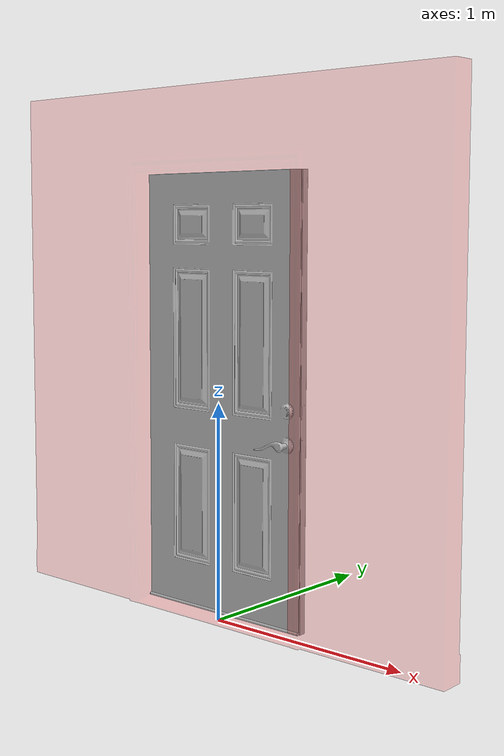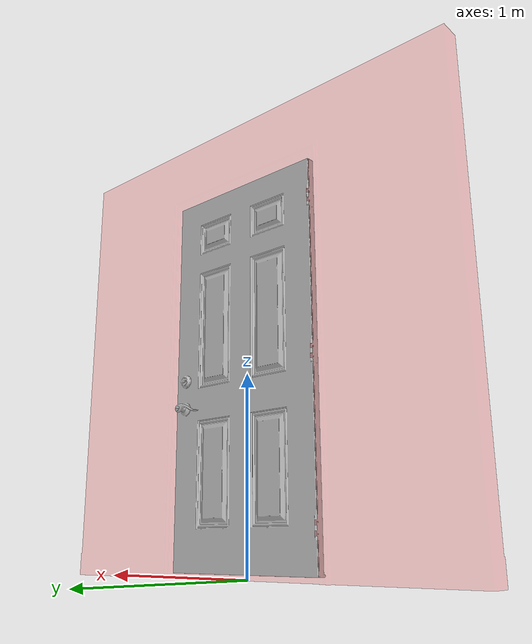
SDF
<?xml version="1.0"?>
<!-- Minimal generated SDF -->
<sdf version='1.6'>
  <model name='exterior_door_frame'>
    <link name='exterior_door_frame'>
    <inertial>
        <pose frame="">7.9737e-03 6.8264e-03 5.1174e-03 0 0 0</pose>
        <mass>1e2</mass>
        <inertia>
          <ixx>1</ixx>
          <ixy>0</ixy>
          <ixz>0</ixz>
          <iyy>1</iyy>
          <iyz>0</iyz>
          <izz>1</izz>
        </inertia>
      </inertial>
      <visual name='exterior_door_frame'>
        <pose>0.0 0.0 0.0 0.0 -0.0 0.0</pose>
        <geometry>
          <mesh>
            <uri>../meshes/exterior_door_frame.obj</uri>
            <scale>1.0 1.0 1.0</scale>
          </mesh>
        </geometry>
        <material>
          <!-- The way that Drake picks up the texture file. The diffuse tag
          will be ignored if the drake:diffuse_map exists-->
          <diffuse>1 0 0 0.1</diffuse>
          <drake:diffuse_map>
            ../meshes/exterior_door_color.png
          </drake:diffuse_map>
        </material>
      </visual>
        <collision name="collision_box_wall_001">
          <pose>-0.865186 -0.000195 1.20788 0.0 0.0 0.0</pose>
               <geometry>
                 <box>
                   <size>0.744 0.115 2.416</size>
                 </box>
               </geometry>
        </collision>

        <collision name="collision_box_wall_002">
          <pose>0.865186 -0.000195 1.20788 0.0 0.0 0.0</pose>
               <geometry>
                 <box>
                   <size>0.744 0.115 2.416</size>
                 </box>
               </geometry>
        </collision>

        <collision name="collision_box_wall_003">
          <pose>0.0 -0.000195 2.24743 0.0 0.0 0.0</pose>
               <geometry>
                 <box>
                   <size>2.4681 0.109109 0.336892</size>
                 </box>
               </geometry>
        </collision>

        <collision name="collision_box_frame_001">
          <pose>-0.488889 -0.000628 1.05458 0.0 0.0 0.0</pose>
               <geometry>
                 <box>
                   <size>0.062642 0.141404 2.11065</size>
                 </box>
               </geometry>
        </collision>

<!-- Collision Blocks for the latch hole -->

        <collision name="collision_box_frame_latch_001">
          <pose>0.488889 -0.000628 1.48662 0.0 0.0 0.0</pose>
               <geometry>
                 <box>
                   <size>0.062642 0.141404 1.24657</size>
                 </box>
               </geometry>
        </collision>

        <collision name="collision_box_frame_latch_002">
          <pose>0.488889 0.057667 0.853381 0.0 0.0 0.0</pose>
               <geometry>
                 <box>
                   <size>0.062642 0.024814 0.019913</size>
                 </box>
               </geometry>
        </collision>

        <collision name="collision_box_frame_latch_003">
          <pose>0.495862 0.036581 0.853381 0.0 0.0 0.0</pose>
               <geometry>
                 <box>
                   <size>0.048695 0.017358 0.019913</size>
                 </box>
               </geometry>
        </collision>

        <collision name="collision_box_frame_latch_004">
          <pose>0.488889 -0.021714 0.853381 0.0 0.0 0.0</pose>
               <geometry>
                 <box>
                   <size>0.062642 0.099232 0.019913</size>
                 </box>
               </geometry>
        </collision>

        <collision name="collision_box_frame_latch_005">
          <pose>0.488889 -0.000628 0.42134 0.0 0.0 0.0</pose>
               <geometry>
                 <box>
                   <size>0.062642 0.141404 0.84417</size>
                 </box>
               </geometry>
        </collision>

<!-- End of Collision Blocks for the latch hole -->

        <collision name="collision_box_frame_002">
          <pose>0.0 -0.000628 2.07222 0.0 0.0 0.0</pose>
               <geometry>
                 <box>
                   <size>0.91657 0.141404 0.07535</size>
                 </box>
               </geometry>
        </collision>

        <collision name="collision_box_bottom_ramp_box_001">
          <pose>0.0 -0.036589 0.004421 0.0 0.0 0.0</pose>
               <geometry>
                 <box>
                   <size>0.934852 0.084371 0.009815</size>
                 </box>
               </geometry>
        </collision>

        <collision name="collision_box_bottom_ramp_box_incline">
          <pose>0.0 -0.026274 0.011581 0.180913 0.0 0.0</pose>
               <geometry>
                 <box>
                   <size>0.934852 0.087413 0.012055</size>
                 </box>
               </geometry>
        </collision>

        <collision name="collision_box_bottom_black_bar">
          <pose>0.0 0.035083 0.013043 0.0 0.0 0.0</pose>
               <geometry>
                 <box>
                   <size>0.92355 0.04514 0.0254</size>
                 </box>
               </geometry>
        </collision>
    </link>

    <link name='exterior_door'>
      <inertial>
        <pose frame="">7.9737e-03 6.8264e-03 5.1174e-03 0 0 0</pose>
        <mass>10</mass>
        <inertia>
          <ixx>1</ixx>
          <ixy>0</ixy>
          <ixz>0</ixz>
          <iyy>1</iyy>
          <iyz>0</iyz>
          <izz>1</izz>
        </inertia>
      </inertial>
      <visual name='exterior_door'>
        <pose>-0.45944 0.07119 1.02649 0.0 -0.0 0.0</pose>
        <geometry>
          <mesh>
            <uri>../meshes/exterior_door.obj</uri>
            <scale>1.0 1.0 1.0</scale>
          </mesh>
        </geometry>
        <material>
          <drake:diffuse_map>
            ../meshes/exterior_door_color.png
          </drake:diffuse_map>
        </material>
      </visual>
      <collision name="collision_box_door">
        <pose>-0.0 0.036 1.02904 0.0 0.0 0.0</pose>
        <geometry>
          <box>
            <size>0.9144 0.04445 2.007</size>
          </box>
        </geometry>
      </collision>
      <collision name="collision_cylinder_handle_escutcheon_001">
        <pose>0.38688 0.0354 0.853382 1.5708 0.0 0.0</pose>
        <geometry>
          <cylinder>
            <length>0.0585</length>
            <radius>0.0355</radius>
          </cylinder>
        </geometry>
      </collision>
      <collision name="collision_cylinder_handle_escutcheon_002">
        <pose>0.38688 0.0354 0.853382 1.5708 0.0 0.0</pose>
        <geometry>
          <cylinder>
            <length>0.0755</length>
            <radius>0.014</radius>
          </cylinder>
        </geometry>
      </collision>
    </link>

    <link name='exterior_door_handle'>
      <inertial>
        <pose frame="">7.9737e-03 6.8264e-03 5.1174e-03 0 0 0</pose>
        <mass>0.1</mass>
        <inertia>
          <ixx>5.20e-06</ixx>
          <ixy>0</ixy>
          <ixz>-7.51e-06</ixz>
          <iyy>166e-06</iyy>
          <iyz>0</iyz>
          <izz>169e-06</izz>
        </inertia>
      </inertial>
      <visual name='exterior_door_handle'>
        <pose>0.387186 0.035427 0.853397 0.0 -0.0 0.0</pose>
        <geometry>
          <mesh>
            <uri>../meshes/exterior_door_handle.obj</uri>
            <scale>1.0 1.0 1.0</scale>
          </mesh>
        </geometry>
        <material>
          <drake:diffuse_map>
            ../meshes/exterior_door_color.png
          </drake:diffuse_map>
        </material>
      </visual>

        <collision name="collision_cylinder_stem">
          <pose>0.387186 0.035427 0.853397 1.5708 0.0 0.0</pose>
               <geometry>
                 <cylinder>
                   <radius>0.018</radius>
                   <length>0.170506</length>
                 </cylinder>
               </geometry>
        </collision>

        <!-- collision meshes for right handle.-->

        <collision name="collision_cylinder_pommel_right">
          <pose>0.386865 -0.041568 0.853458 1.5708 0.0 0.0</pose>
               <geometry>
                 <cylinder>
                   <radius>0.022</radius>
                   <length>0.017253</length>
                 </cylinder>
               </geometry>
        </collision>

        <collision name="collision_box_spine_right_001">
          <pose>0.371112 -0.041367 0.862406 0.0 -0.060521 0.0</pose>
               <geometry>
                 <box>
                   <size>0.026904 0.015296 0.026904</size>
                 </box>
               </geometry>
        </collision>

        <collision name="collision_box_spine_right_002">
          <pose>0.331095 -0.040619 0.856316 0.0 -0.443974 -0.016264</pose>
               <geometry>
                 <box>
                   <size>0.065594 0.017729 0.01367</size>
                 </box>
               </geometry>
        </collision>

        <collision name="collision_box_spine_right_003">
          <pose>0.292967 -0.040654 0.837617 0.0 -0.39968 -0.0</pose>
               <geometry>
                 <box>
                   <size>0.029169 0.018992 0.011425</size>
                 </box>
               </geometry>
        </collision>

        <collision name="collision_box_spine_right_004">
          <pose>0.269998 -0.040767 0.830543 0.0 -0.172036 -0.0</pose>
               <geometry>
                 <box>
                   <size>0.028944 0.020365 0.009698</size>
                 </box>
               </geometry>
        </collision>

        <collision name="collision_cylinder_spine_bottom_right">
          <pose>0.254456 -0.040767 0.828399 0.0 -0.051273 0.0</pose>
               <geometry>
                 <cylinder>
                   <radius>0.0125</radius>
                   <length>0.00944</length>
                 </cylinder>
               </geometry>
        </collision>

        <!-- collision meshes for left handle. -->

        <collision name="collision_cylinder_pommel_left">
          <pose>0.386865 0.112875 0.853458 1.5708 0.0 0.0</pose>
               <geometry>
                 <cylinder>
                   <radius>0.022</radius>
                   <length>0.017253</length>
                 </cylinder>
               </geometry>
        </collision>

        <collision name="collision_box_spine_left_001">
          <pose>0.371112 0.11222 0.862406 0.0 -0.060521 0.0</pose>
               <geometry>
                 <box>
                   <size>0.026904 0.015296 0.026904</size>
                 </box>
               </geometry>
        </collision>

        <collision name="collision_box_spine_left_002">
          <pose>0.331095 0.111472 0.856316 0.0 -0.443974 -0.016264</pose>
               <geometry>
                 <box>
                   <size>0.065594 0.017729 0.01367</size>
                 </box>
               </geometry>
        </collision>

        <collision name="collision_box_spine_left_003">
          <pose>0.292967 0.111507 0.837617 0.0 -0.39968 -0.0</pose>
               <geometry>
                 <box>
                   <size>0.029169 0.018992 0.011425</size>
                 </box>
               </geometry>
        </collision>

        <collision name="collision_box_spine_left_004">
          <pose>0.269998 0.11162 0.830543 0.0 -0.172036 -0.0</pose>
               <geometry>
                 <box>
                   <size>0.028944 0.020365 0.009698</size>
                 </box>
               </geometry>
        </collision>

        <collision name="collision_cylinder_spine_bottom_left">
          <pose>0.254456 0.11162 0.828399 0.0 -0.051273 0.0</pose>
               <geometry>
                 <cylinder>
                   <radius>0.0125</radius>
                   <length>0.00944</length>
                 </cylinder>
               </geometry>
        </collision>

    </link>

    <link name='exterior_door_latch'>
    <inertial>
        <pose frame="">7.9737e-03 6.8264e-03 5.1174e-03 0 0 0</pose>
        <mass>1e2</mass>
        <inertia>
          <ixx>1</ixx>
          <ixy>0</ixy>
          <ixz>0</ixz>
          <iyy>1</iyy>
          <iyz>0</iyz>
          <izz>1</izz>
        </inertia>
      </inertial>
      <visual name='exterior_door_latch'>
        <pose>0.456427 0.036581 0.853381 0.0 -0.0 0.0</pose>
        <geometry>
          <mesh>
            <uri>../meshes/exterior_door_latch.obj</uri>
            <scale>1.0 1.0 1.0</scale>
          </mesh>
        </geometry>
        <material>
          <diffuse>1 0 0 0.1</diffuse>
          <drake:diffuse_map>
            ../meshes/exterior_door_color.png
          </drake:diffuse_map>
        </material>
      </visual>
        <collision name="collision_box_latch_001">
          <pose>0.456427 0.036581 0.853381 0.0 0.0 0.0</pose>
               <geometry>
                 <box>
                   <size>0.030176 0.017358 0.019913</size>
                 </box>
               </geometry>
        </collision>
    </link>

    <joint name='exterior_door_hinge' type='revolute'>
      <child>exterior_door</child>
      <parent>exterior_door_frame</parent>
      <pose frame=''>-0.45944 0.07119 1.02649 0 -0 0</pose>
      <axis>
        <xyz>0 0 1</xyz>
        <limit>
          <effort>0</effort>
          <lower>0</lower>
          <upper>2.0</upper>
        </limit>
        <dynamics>
          <damping>1.0</damping>
          <friction>0.5</friction>
          <spring_reference>0</spring_reference>
          <spring_stiffness>2.0</spring_stiffness>
        </dynamics>
        <use_parent_model_frame>1</use_parent_model_frame>
      </axis>
    </joint>

    <joint name='exterior_door_handle_hinge' type='revolute'>
      <child>exterior_door_handle</child>
      <parent>exterior_door</parent>
      <pose frame=''>0.387186 0.035427 0.853397 0 -0 0</pose>
      <axis>
        <xyz>0 1 0</xyz>
        <limit>
          <effort>0</effort>
          <lower>-1.0</lower>
          <upper>1.0</upper>
        </limit>
        <dynamics>
          <damping>1.0</damping>
          <friction>0.5</friction>
          <spring_reference>0</spring_reference>
          <spring_stiffness>2.0</spring_stiffness>
        </dynamics>
        <use_parent_model_frame>1</use_parent_model_frame>
      </axis>
    </joint>

    <joint name='exterior_door_latch_joint' type='prismatic'>
      <child>exterior_door_latch</child>
      <parent>exterior_door</parent>
      <pose frame=''>0.456427 0.036581 0.853381 0 -0 0</pose>
      <axis>
        <xyz>1 0 0</xyz>
        <limit>
          <effort>0</effort>
          <lower>-1.0</lower>
          <upper>1.0</upper>
        </limit>
        <dynamics>
          <damping>1.0</damping>
          <friction>0.5</friction>
          <spring_reference>0</spring_reference>
          <spring_stiffness>2.0</spring_stiffness>
        </dynamics>
        <use_parent_model_frame>1</use_parent_model_frame>
      </axis>
    </joint>

  </model>
</sdf>
